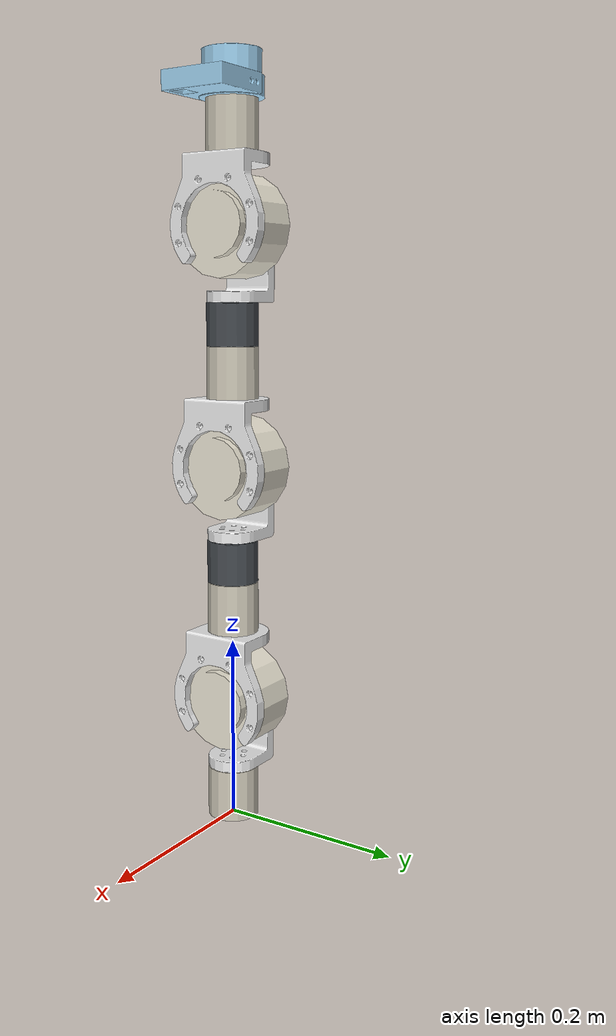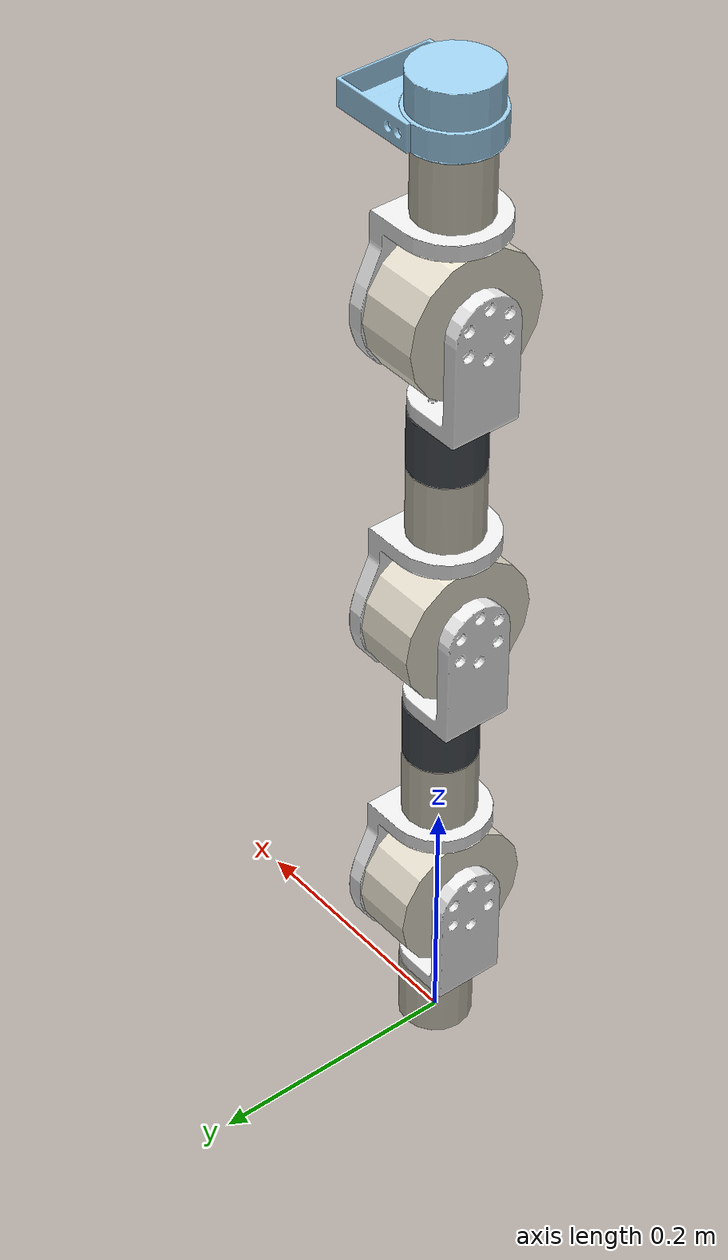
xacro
<?xml version="1.0"?>
<robot xmlns:xacro="http://www.ros.org/wiki/xacro" name="simple_assembly_tracking">

    <xacro:include filename="$(find simple_assembly_tracking)/urdf/simple_assembly_tracking.urdf.xacro" />

    <!-- CAN HAT ros2_control wiring. The original serial wiring is kept in simple_assembly_tracking.urdf.xacro. -->
    <xacro:include filename="simple_assembly_tracking_canhat.ros2_control.xacro" />
    <xacro:simple_assembly_tracking_canhat_ros2_control name="DamiaoArm"/>

</robot>

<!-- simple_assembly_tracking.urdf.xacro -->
<robot xmlns:xacro="http://www.ros.org/wiki/xacro" name="simple_assembly_tracking">

    <xacro:include filename="$(find full_assembly)/urdf/simple_assembly.urdf" />

    <!-- Pure frame at the OnShape camera mount; mount mesh already shows the camera body. -->
    <link name="camera_link"/>

    <joint name="camera_joint" type="fixed">
        <parent link="cam_mount_assy__1_"/>
        <child link="camera_link"/>
        <origin xyz="0 0 0" rpy="0 0 0"/>
    </joint>

    <link name="camera_optical_frame"/>

    <!-- ROS optical convention: X=right, Y=down, Z=forward (looking out the lens).
         17 mm offset = lens centre is 17 mm right of the mount centre. -->
    <joint name="camera_optical_joint" type="fixed">
        <parent link="camera_link"/>
        <child link="camera_optical_frame"/>
        <origin xyz="0.017 0 0" rpy="0 0 1.5708"/>
    </joint>

</robot>

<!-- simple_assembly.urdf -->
<!--URDF generated by ONSHAPE BY PTC INC, 1.214-->
<robot name="simple_assembly">
    <link name="cam_mount_assy__1_" />
    <link name="part_1">
        <inertial>
            <mass value="0.392289" />
            <origin xyz="-7.19431e-18 2.31112e-33 0.02825" rpy="0 -0 0" />
            <inertia ixx="0.000184016" ixy="0" ixz="0" iyy="0.000184016" iyz="0" izz="0.000159318" />
        </inertial>
        <visual>
            <origin xyz="-5.31105e-18 -1.74512e-18 0" rpy="0 -0 0" />
            <geometry>
                <mesh filename="package://full_assembly/meshes/Part_1.stl" scale="1 1 1" />
            </geometry>
            <material name="0.800000_0.776471_0.713725_0.000000_0.000000">
                <color rgba="0.8 0.776471 0.713726 1" />
            </material>
        </visual>
    </link>
    <link name="part_1_1">
        <inertial>
            <mass value="0.326785" />
            <origin xyz="0.0216933 3.23641e-08 -0.0482815" rpy="0 -0 0" />
            <inertia ixx="0.000594265" ixy="-2.33687e-11" ixz="0.000101405" iyy="0.000441844" iyz="-4.36749e-10" izz="0.000424915" />
        </inertial>
        <visual>
            <origin xyz="-1.41337e-14 5.86445e-18 -0.06225" rpy="0 -0 0" />
            <geometry>
                <mesh filename="package://full_assembly/meshes/Part_1_1.stl" scale="1 1 1" />
            </geometry>
            <material name="0.917647_0.917647_0.917647_0.000000_0.000000">
                <color rgba="0.917647 0.917647 0.917647 1" />
            </material>
        </visual>
    </link>
    <link name="part_1_10">
        <inertial>
            <mass value="0.326785" />
            <origin xyz="0.0216933 3.23641e-08 -0.0482815" rpy="0 -0 0" />
            <inertia ixx="0.000594265" ixy="-2.33687e-11" ixz="0.000101405" iyy="0.000441844" iyz="-4.36749e-10" izz="0.000424915" />
        </inertial>
        <visual>
            <origin xyz="-1.41337e-14 5.86445e-18 -0.06225" rpy="0 -0 0" />
            <geometry>
                <mesh filename="package://full_assembly/meshes/Part_1_1.stl" scale="1 1 1" />
            </geometry>
            <material name="0.917647_0.917647_0.917647_0.000000_0.000000">
                <color rgba="0.917647 0.917647 0.917647 1" />
            </material>
        </visual>
    </link>
    <link name="part_1_11">
        <inertial>
            <mass value="0.284011" />
            <origin xyz="-0.0234111 -2.25131e-10 0.0361492" rpy="0 -0 0" />
            <inertia ixx="0.000368023" ixy="4.4845e-12" ixz="8.61899e-05" iyy="0.000382149" iyz="-7.95148e-12" izz="0.000153368" />
        </inertial>
        <visual>
            <origin xyz="0 0 -0.0002" rpy="0 -0 0" />
            <geometry>
                <mesh filename="package://full_assembly/meshes/Part_1_3.stl" scale="1 1 1" />
            </geometry>
            <material name="0.917647_0.917647_0.917647_0.000000_0.000000">
                <color rgba="0.917647 0.917647 0.917647 1" />
            </material>
        </visual>
    </link>
    <link name="part_1_12">
        <inertial>
            <mass value="0.392289" />
            <origin xyz="-1.88325e-18 2.31112e-33 0.02825" rpy="0 -0 0" />
            <inertia ixx="0.000184016" ixy="0" ixz="0" iyy="0.000184016" iyz="0" izz="0.000159318" />
        </inertial>
        <visual>
            <origin xyz="0 -1.74512e-18 0" rpy="0 -0 0" />
            <geometry>
                <mesh filename="package://full_assembly/meshes/Part_1.stl" scale="1 1 1" />
            </geometry>
            <material name="0.800000_0.776471_0.713725_0.000000_0.000000">
                <color rgba="0.8 0.776471 0.713726 1" />
            </material>
        </visual>
    </link>
    <link name="part_1_13">
        <inertial>
            <mass value="0.284011" />
            <origin xyz="-0.0234111 -2.25131e-10 0.0361492" rpy="0 -0 0" />
            <inertia ixx="0.000368023" ixy="4.4845e-12" ixz="8.61899e-05" iyy="0.000382149" iyz="-7.95148e-12" izz="0.000153368" />
        </inertial>
        <visual>
            <origin xyz="0 0 -0.0002" rpy="0 -0 0" />
            <geometry>
                <mesh filename="package://full_assembly/meshes/Part_1_3.stl" scale="1 1 1" />
            </geometry>
            <material name="0.917647_0.917647_0.917647_0.000000_0.000000">
                <color rgba="0.917647 0.917647 0.917647 1" />
            </material>
        </visual>
    </link>
    <link name="part_1_14">
        <inertial>
            <mass value="0.392289" />
            <origin xyz="-1.88325e-18 2.31112e-33 0.02825" rpy="0 -0 0" />
            <inertia ixx="0.000184016" ixy="0" ixz="0" iyy="0.000184016" iyz="0" izz="0.000159318" />
        </inertial>
        <visual>
            <origin xyz="0 -1.74512e-18 0" rpy="0 -0 0" />
            <geometry>
                <mesh filename="package://full_assembly/meshes/Part_1.stl" scale="1 1 1" />
            </geometry>
            <material name="0.800000_0.776471_0.713725_0.000000_0.000000">
                <color rgba="0.8 0.776471 0.713726 1" />
            </material>
        </visual>
    </link>
    <link name="part_1_15">
        <inertial>
            <mass value="9.94808e-05" />
            <origin xyz="-4.05706e-08 1.55401e-08 -0.015" rpy="0 -0 0" />
            <inertia ixx="3.37032e-08" ixy="0" ixz="0" iyy="3.37032e-08" iyz="0" izz="5.25037e-08" />
        </inertial>
        <visual>
            <origin xyz="-4.09465e-08 1.55389e-08 -0.03" rpy="0 -0 0" />
            <geometry>
                <mesh filename="package://full_assembly/meshes/Part_1_5.stl" scale="1 1 1" />
            </geometry>
            <material name="0.615686_0.811765_0.929412_0.000000_0.000000">
                <color rgba="0.615686 0.811765 0.929412 1" />
            </material>
        </visual>
    </link>
    <link name="part_1_16">
        <inertial>
            <mass value="7.29541e-05" />
            <origin xyz="-2.19833e-05 -2.09428e-08 0.00997844" rpy="0 -0 0" />
            <inertia ixx="2.62877e-08" ixy="-1.14213e-15" ixz="2.83597e-12" iyy="2.63584e-08" iyz="3.65213e-15" izz="4.77548e-08" />
        </inertial>
        <visual>
            <origin xyz="-4.76287e-08 -1.8008e-08 0.01125" rpy="0 -0 0" />
            <geometry>
                <mesh filename="package://full_assembly/meshes/Part_1_6.stl" scale="1 1 1" />
            </geometry>
            <material name="0.615686_0.811765_0.929412_0.000000_0.000000">
                <color rgba="0.615686 0.811765 0.929412 1" />
            </material>
        </visual>
    </link>
    <link name="part_1_17">
        <inertial>
            <mass value="3.51671e-05" />
            <origin xyz="-0.0013579 0.0396975 -0.00952187" rpy="0 -0 0" />
            <inertia ixx="1.25577e-08" ixy="6.63795e-10" ixz="-3.27558e-10" iyy="2.86745e-08" iyz="8.6627e-10" izz="3.81891e-08" />
        </inertial>
        <visual>
            <origin xyz="0 -2.14926e-18 -0.0185" rpy="0 -0 0" />
            <geometry>
                <mesh filename="package://full_assembly/meshes/Part_1_7.stl" scale="1 1 1" />
            </geometry>
            <material name="0.615686_0.811765_0.929412_0.000000_0.000000">
                <color rgba="0.615686 0.811765 0.929412 1" />
            </material>
        </visual>
    </link>
    <link name="part_1_2">
        <inertial>
            <mass value="1.49866" />
            <origin xyz="-9.38573e-18 -8.98462e-20 0.028166" rpy="0 -0 0" />
            <inertia ixx="0.0015335" ixy="0" ixz="0" iyy="0.0015335" iyz="0" izz="0.00224985" />
        </inertial>
        <visual>
            <origin xyz="-1.10049e-17 -3.42901e-18 0" rpy="0 -0 0" />
            <geometry>
                <mesh filename="package://full_assembly/meshes/Part_1_2.stl" scale="1 1 1" />
            </geometry>
            <material name="0.901961_0.878431_0.811765_0.000000_0.000000">
                <color rgba="0.901961 0.878431 0.811765 1" />
            </material>
        </visual>
    </link>
    <link name="part_1_3">
        <inertial>
            <mass value="1.49866" />
            <origin xyz="1.61912e-18 -8.98462e-20 0.028166" rpy="0 -0 0" />
            <inertia ixx="0.0015335" ixy="0" ixz="0" iyy="0.0015335" iyz="0" izz="0.00224985" />
        </inertial>
        <visual>
            <origin xyz="0 -3.42901e-18 0" rpy="0 -0 0" />
            <geometry>
                <mesh filename="package://full_assembly/meshes/Part_1_2.stl" scale="1 1 1" />
            </geometry>
            <material name="0.901961_0.878431_0.811765_0.000000_0.000000">
                <color rgba="0.901961 0.878431 0.811765 1" />
            </material>
        </visual>
    </link>
    <link name="part_1_4">
        <inertial>
            <mass value="0.284011" />
            <origin xyz="-0.0234111 -2.25131e-10 0.0361492" rpy="0 -0 0" />
            <inertia ixx="0.000368023" ixy="4.4845e-12" ixz="8.61899e-05" iyy="0.000382149" iyz="-7.95148e-12" izz="0.000153368" />
        </inertial>
        <visual>
            <origin xyz="0 0 -0.0002" rpy="0 -0 0" />
            <geometry>
                <mesh filename="package://full_assembly/meshes/Part_1_3.stl" scale="1 1 1" />
            </geometry>
            <material name="0.917647_0.917647_0.917647_0.000000_0.000000">
                <color rgba="0.917647 0.917647 0.917647 1" />
            </material>
        </visual>
    </link>
    <link name="part_1_5">
        <inertial>
            <mass value="0.319085" />
            <origin xyz="-3.6505e-08 -1.40559e-08 0.0234998" rpy="0 -0 0" />
            <inertia ixx="0.000124216" ixy="-2.09268e-14" ixz="-2.75013e-13" iyy="0.000124216" iyz="1.7298e-13" izz="0.000131075" />
        </inertial>
        <visual>
            <origin xyz="-3.67805e-08 -1.40564e-08 0" rpy="0 -0 0" />
            <geometry>
                <mesh filename="package://full_assembly/meshes/Part_1_4.stl" scale="1 1 1" />
            </geometry>
            <material name="0.262745_0.282353_0.301961_0.000000_0.000000">
                <color rgba="0.262745 0.282353 0.301961 1" />
            </material>
        </visual>
    </link>
    <link name="part_1_6">
        <inertial>
            <mass value="0.326785" />
            <origin xyz="0.0216933 3.23641e-08 -0.0482815" rpy="0 -0 0" />
            <inertia ixx="0.000594265" ixy="-2.33687e-11" ixz="0.000101405" iyy="0.000441844" iyz="-4.36749e-10" izz="0.000424915" />
        </inertial>
        <visual>
            <origin xyz="-1.41337e-14 5.86445e-18 -0.06225" rpy="0 -0 0" />
            <geometry>
                <mesh filename="package://full_assembly/meshes/Part_1_1.stl" scale="1 1 1" />
            </geometry>
            <material name="0.917647_0.917647_0.917647_0.000000_0.000000">
                <color rgba="0.917647 0.917647 0.917647 1" />
            </material>
        </visual>
    </link>
    <link name="part_1_7">
        <inertial>
            <mass value="1.49866" />
            <origin xyz="1.61912e-18 -8.98462e-20 0.028166" rpy="0 -0 0" />
            <inertia ixx="0.0015335" ixy="0" ixz="0" iyy="0.0015335" iyz="0" izz="0.00224985" />
        </inertial>
        <visual>
            <origin xyz="0 -3.42901e-18 0" rpy="0 -0 0" />
            <geometry>
                <mesh filename="package://full_assembly/meshes/Part_1_2.stl" scale="1 1 1" />
            </geometry>
            <material name="0.901961_0.878431_0.811765_0.000000_0.000000">
                <color rgba="0.901961 0.878431 0.811765 1" />
            </material>
        </visual>
    </link>
    <link name="part_1_8">
        <inertial>
            <mass value="0.392289" />
            <origin xyz="-1.88325e-18 2.31112e-33 0.02825" rpy="0 -0 0" />
            <inertia ixx="0.000184016" ixy="0" ixz="0" iyy="0.000184016" iyz="0" izz="0.000159318" />
        </inertial>
        <visual>
            <origin xyz="0 -1.74512e-18 0" rpy="0 -0 0" />
            <geometry>
                <mesh filename="package://full_assembly/meshes/Part_1.stl" scale="1 1 1" />
            </geometry>
            <material name="0.800000_0.776471_0.713725_0.000000_0.000000">
                <color rgba="0.8 0.776471 0.713726 1" />
            </material>
        </visual>
    </link>
    <link name="part_1_9">
        <inertial>
            <mass value="0.319085" />
            <origin xyz="-3.6505e-08 -1.40559e-08 0.0234998" rpy="0 -0 0" />
            <inertia ixx="0.000124216" ixy="-2.09268e-14" ixz="-2.75013e-13" iyy="0.000124216" iyz="1.7298e-13" izz="0.000131075" />
        </inertial>
        <visual>
            <origin xyz="-3.67805e-08 -1.40564e-08 0" rpy="0 -0 0" />
            <geometry>
                <mesh filename="package://full_assembly/meshes/Part_1_4.stl" scale="1 1 1" />
            </geometry>
            <material name="0.262745_0.282353_0.301961_0.000000_0.000000">
                <color rgba="0.262745 0.282353 0.301961 1" />
            </material>
        </visual>
    </link>
    <link name="root" />
    <joint name="fastened_1_0" type="fixed">
        <origin xyz="0 -1.72433e-18 0" rpy="0 -0 0" />
        <axis xyz="0 0 -1" />
        <parent link="root" />
        <child link="part_1_12" />
    </joint>
    <joint name="fastened_1_1" type="fixed">
        <origin xyz="-4.76287e-08 -1.8008e-08 0.013" rpy="-2.77556e-17 -3.46945e-18 4.81482e-35" />
        <axis xyz="0 0 1" />
        <parent link="part_1_16" />
        <child link="cam_mount_assy__1_" />
    </joint>
    <joint name="fastened_2_0" type="fixed">
        <origin xyz="-2.77556e-17 0 0.062" rpy="0 1.5708 1.5708" />
        <axis xyz="-1 0 0" />
        <parent link="part_1_7" />
        <child link="part_1_6" />
    </joint>
    <joint name="fastened_2_1" type="fixed">
        <origin xyz="-3.18511e-08 -3.86443e-08 0.0195" rpy="-1.76942e-16 2.42861e-17 -1.5708" />
        <axis xyz="0 0 1" />
        <parent link="part_1_16" />
        <child link="part_1_17" />
    </joint>
    <joint name="fastened_3_0" type="fixed">
        <origin xyz="-3.18511e-08 -3.86443e-08 0.0195" rpy="3.14159 1.20737e-15 1.17961e-15" />
        <axis xyz="0 0 -1" />
        <parent link="part_1_16" />
        <child link="part_1_15" />
    </joint>
    <joint name="fastened_3_1" type="fixed">
        <origin xyz="0.0351604 -1.10739e-08 -0.07495" rpy="-3.14159 6.6664e-15 3.14159" />
        <axis xyz="0 0 -1" />
        <parent link="part_1_6" />
        <child link="part_1_14" />
    </joint>
    <joint name="fastened_4_0" type="fixed">
        <origin xyz="1.62635e-12 -2.81135e-08 0.047" rpy="-3.46945e-17 1.38778e-17 -2.40741e-34" />
        <axis xyz="0 0 -1" />
        <parent link="part_1_9" />
        <child link="part_1_11" />
    </joint>
    <joint name="fastened_5_0" type="fixed">
        <origin xyz="0 3.1225e-17 0.062" rpy="0 1.5708 -4.71239" />
        <axis xyz="-1 0 0" />
        <parent link="part_1_2" />
        <child link="part_1_1" />
    </joint>
    <joint name="fastened_6_0" type="fixed">
        <origin xyz="0.0351604 -1.10739e-08 -0.07495" rpy="3.14159 1.11022e-16 3.14159" />
        <axis xyz="0 0 -1" />
        <parent link="part_1_1" />
        <child link="part_1" />
    </joint>
    <joint name="fastened_7_0" type="fixed">
        <origin xyz="1.62642e-12 -2.81135e-08 0.047" rpy="2.77556e-17 6.93889e-18 -1.38778e-17" />
        <axis xyz="0 0 -1" />
        <parent link="part_1_5" />
        <child link="part_1_4" />
    </joint>
    <joint name="fastened_8_0" type="fixed">
        <origin xyz="0 4.85723e-17 0.062" rpy="0 1.5708 1.5708" />
        <axis xyz="-1 0 0" />
        <parent link="part_1_3" />
        <child link="part_1_10" />
    </joint>
    <joint name="fastened_9_0" type="fixed">
        <origin xyz="0.0351604 -1.10739e-08 -0.07495" rpy="-3.14159 -8.39606e-16 -1.5708" />
        <axis xyz="0 0 -1" />
        <parent link="part_1_10" />
        <child link="part_1_8" />
    </joint>
    <joint name="revolute_1_0" type="revolute">
        <origin xyz="1.17451e-25 1.72433e-18 0.0565" rpy="0 0 0" />
        <axis xyz="0 0 -1" />
        <parent link="part_1_12" />
        <child link="part_1_13" />
        <limit lower="-6.28318" upper="6.28318" effort="150.0" velocity="15.71" />
    </joint>
    <joint name="revolute_2_0" type="revolute">
        <origin xyz="-0.027299 -5.21803e-08 0.0815462" rpy="-1.5708 0 -1.5708" />
        <axis xyz="0 0 1" />
        <parent link="part_1_13" />
        <child link="part_1_7" />
        <limit lower="-1.5708" upper="1.5708" effort="27.0" velocity="5.45" />
    </joint>
    <joint name="revolute_3_0" type="revolute">
        <origin xyz="-2.92192e-17 0 0.0565" rpy="0 0 0" />
        <axis xyz="0 0 -1" />
        <parent link="part_1_14" />
        <child link="part_1_9" />
        <limit lower="-6.28318" upper="6.28318" effort="150.0" velocity="15.71" />
    </joint>
    <joint name="revolute_4_0" type="revolute">
        <origin xyz="-0.027299 -5.21803e-08 0.0815462" rpy="1.5708 3.14159 1.5708" />
        <axis xyz="0 0 1" />
        <parent link="part_1_11" />
        <child link="part_1_2" />
        <limit lower="-1.91986" upper="1.91986" effort="27.0" velocity="5.45" />
    </joint>
    <joint name="revolute_5_0" type="revolute">
        <origin xyz="2.498e-16 1.11022e-16 0.0565" rpy="0 0 0" />
        <axis xyz="0 0 -1" />
        <parent link="part_1" />
        <child link="part_1_5" />
        <limit lower="-6.28318" upper="6.28318" effort="150.0" velocity="15.71" />
    </joint>
    <joint name="revolute_6_0" type="revolute">
        <origin xyz="-0.027299 -5.21803e-08 0.0815462" rpy="-1.5708 0 -1.5708" />
        <axis xyz="0 0 1" />
        <parent link="part_1_4" />
        <child link="part_1_3" />
        <limit lower="-1.91986" upper="1.91986" effort="27.0" velocity="5.45" />
    </joint>
    <joint name="revolute_7_0" type="revolute">
        <origin xyz="5.55112e-17 0 0.0565" rpy="0 0 1.5708" />
        <axis xyz="0 0 -1" />
        <parent link="part_1_8" />
        <child link="part_1_16" />
        <limit lower="-3.14159" upper="3.14159" effort="150.0" velocity="15.71" />
    </joint>

    <link name="wrist_link" />
    <joint name="wrist_link_joint" type="fixed">
        <origin xyz="0 0 0" rpy="0 0 0" />
        <parent link="part_1_16" />
        <child link="wrist_link" />
    </joint>
</robot>
